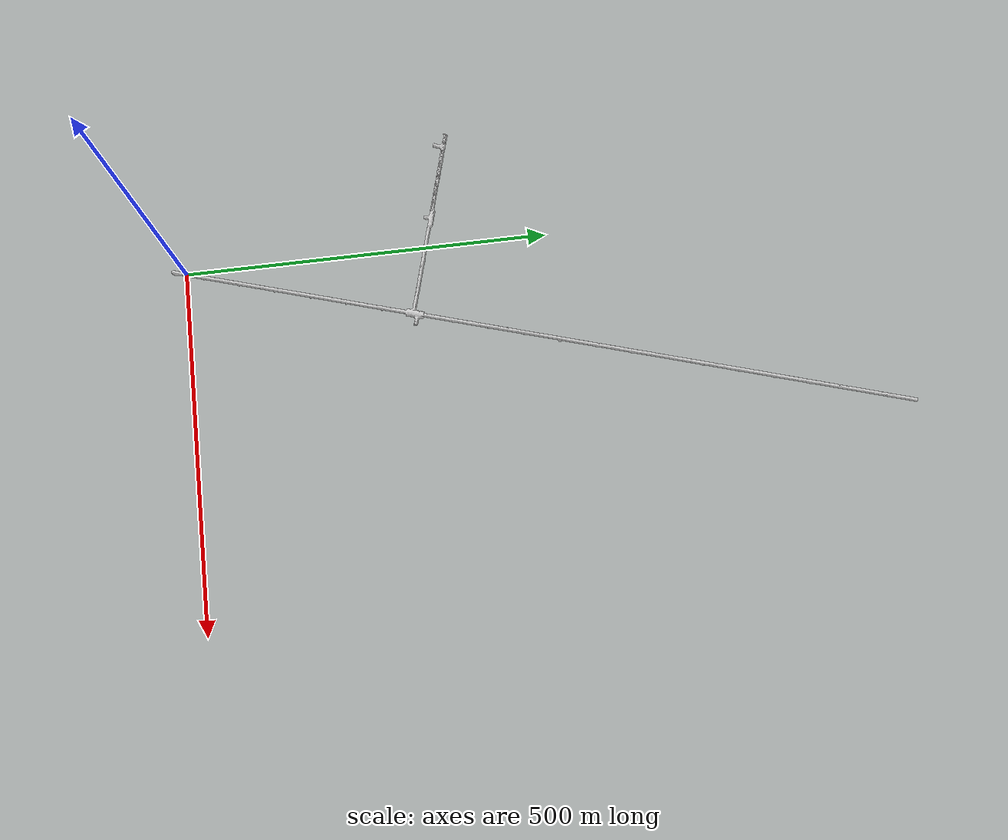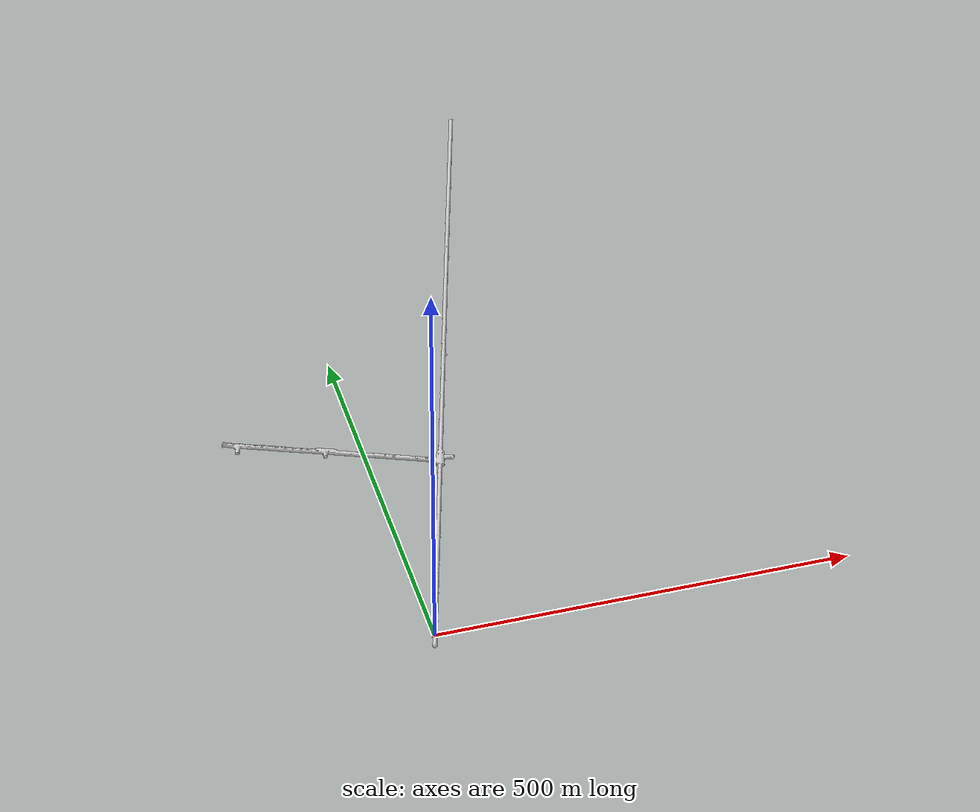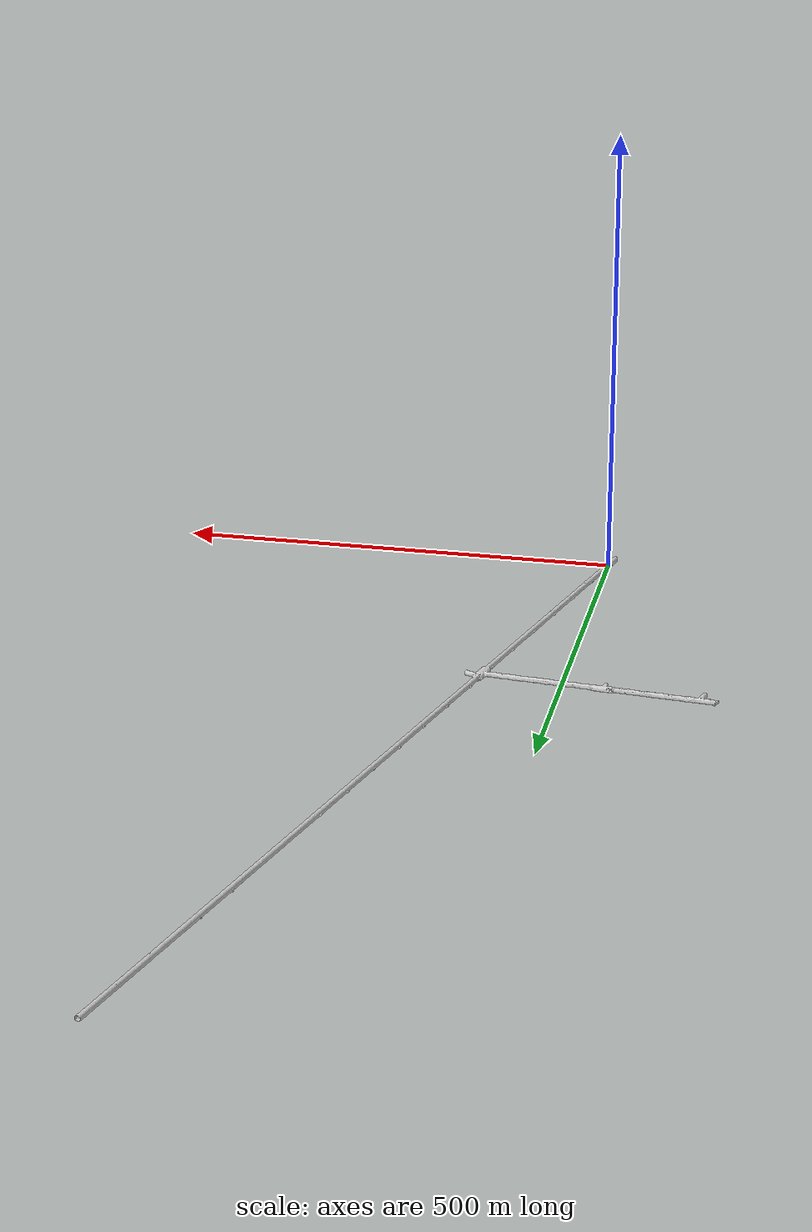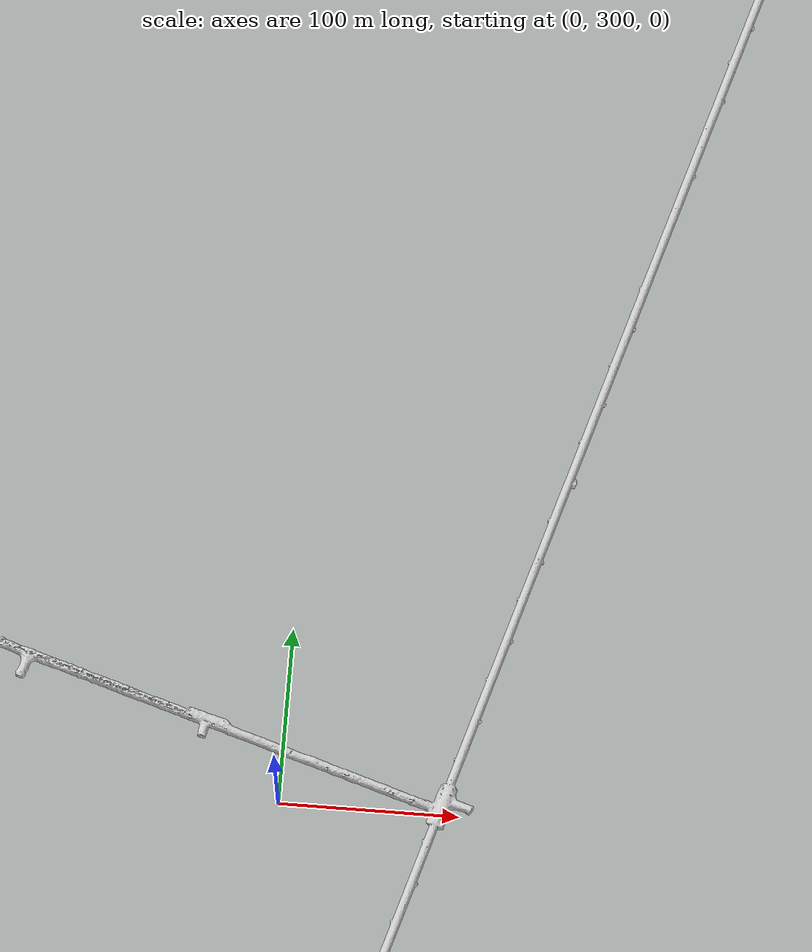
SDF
<?xml version="1.0"?>
<sdf version="1.6">
    <world name="section_6">
        <gui fullscreen='0'>
            <camera name='user_camera'>
                <pose>-6.3 -4.2 3.6 0 0.268 0.304</pose>
            </camera>
        </gui>
        <scene>
            <ambient>0.2 0.2 0.2 1.0</ambient>
            <background>0.34 0.39 0.43 1.0</background>
            <grid>false</grid>
            <origin_visual>false</origin_visual>
        </scene>
        <!-- The base station / staging area -->
        <!-- Important: Do not rename this model! -->
        <include>
            <uri>model://sun</uri>
        </include>
        <include>
            <static>true</static>
            <name>SomportSection6</name>
            <pose>0 0 0 0 0 0</pose>
            <uri>model://somport_section_6</uri>
        </include>
    </world>
</sdf>

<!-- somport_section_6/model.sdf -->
<sdf version="1.6">
    <model name="somport_section_6">
        <static>true</static>
        <link name="link">
            <pose>0 0 0 0 0 0</pose>
            <collision name="collision">
                <geometry>
                    <mesh>
                        <uri>model://somport_section_6/TC66.dae</uri>
                    </mesh>
                </geometry>
            </collision>
            <visual name="visual">
                <geometry>
                    <mesh>
                        <uri>model://somport_section_6/TC66.dae</uri>
                    </mesh>
                </geometry>
            </visual>
        </link>
    </model>
</sdf>
